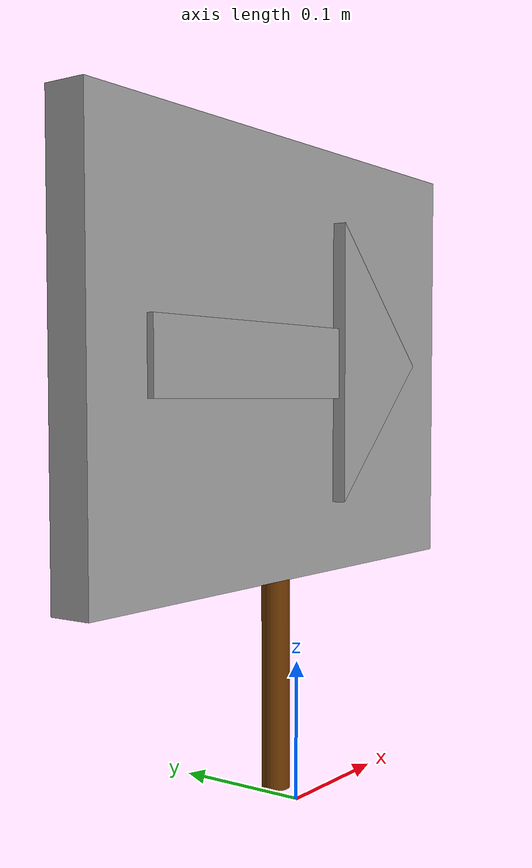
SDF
<?xml version='1.0'?>
<sdf version='1.7'>
  <model name='arrow_board'>
    <link name='link_0'>
      <inertial>
        <mass>1</mass>
        <inertia>
          <ixx>0.145833</ixx>
          <ixy>0</ixy>
          <ixz>0</ixz>
          <iyy>0.145833</iyy>
          <iyz>0</iyz>
          <izz>0.125</izz>
        </inertia>
        <pose>0 0 0 0 -0 0</pose>
      </inertial>
      <pose>-0.01675 0.00625 0.1625 0 -0 0</pose>
      <gravity>0</gravity>
      <self_collide>0</self_collide>
      <kinematic>0</kinematic>
      <enable_wind>0</enable_wind>
      <visual name='visual'>
        <pose>0 0 0 0 -0 0</pose>
        <geometry>
          <cylinder>
            <radius>0.01</radius>
            <length>0.3</length>
          </cylinder>
        </geometry>
        <material>
          <lighting>1</lighting>
          <script>
            <uri>file://media/materials/scripts/gazebo.material</uri>
            <name>Gazebo/Grey</name>
          </script>
          <shader type='pixel'>
            <normal_map>__default__</normal_map>
          </shader>
          <ambient>0.4 0.2 0 1</ambient>
          <diffuse>0.4 0.2 0 1</diffuse>
          <specular>0 0 0 1</specular>
          <emissive>0 0 0 1</emissive>
        </material>
        <transparency>0</transparency>
        <cast_shadows>1</cast_shadows>
      </visual>
      <collision name='collision'>
        <laser_retro>0</laser_retro>
        <max_contacts>10</max_contacts>
        <pose>0 0 0 0 -0 0</pose>
        <geometry>
          <cylinder>
            <radius>0.01</radius>
            <length>0.3</length>
          </cylinder>
        </geometry>
        <surface>
          <friction>
            <ode>
              <mu>1</mu>
              <mu2>1</mu2>
              <fdir1>0 0 0</fdir1>
              <slip1>0</slip1>
              <slip2>0</slip2>
            </ode>
            <torsional>
              <coefficient>1</coefficient>
              <patch_radius>0</patch_radius>
              <surface_radius>0</surface_radius>
              <use_patch_radius>1</use_patch_radius>
              <ode>
                <slip>0</slip>
              </ode>
            </torsional>
          </friction>
          <bounce>
            <restitution_coefficient>0</restitution_coefficient>
            <threshold>1e+06</threshold>
          </bounce>
          <contact>
            <collide_without_contact>0</collide_without_contact>
            <collide_without_contact_bitmask>1</collide_without_contact_bitmask>
            <collide_bitmask>1</collide_bitmask>
            <ode>
              <soft_cfm>0</soft_cfm>
              <soft_erp>0.2</soft_erp>
              <kp>1e+13</kp>
              <kd>1</kd>
              <max_vel>0.01</max_vel>
              <min_depth>0</min_depth>
            </ode>
            <bullet>
              <split_impulse>1</split_impulse>
              <split_impulse_penetration_threshold>-0.01</split_impulse_penetration_threshold>
              <soft_cfm>0</soft_cfm>
              <soft_erp>0.2</soft_erp>
              <kp>1e+13</kp>
              <kd>1</kd>
            </bullet>
          </contact>
        </surface>
      </collision>
    </link>
    <link name='link_1'>
      <inertial>
        <mass>1</mass>
        <inertia>
          <ixx>0.166667</ixx>
          <ixy>0</ixy>
          <ixz>0</ixz>
          <iyy>0.166667</iyy>
          <iyz>0</iyz>
          <izz>0.166667</izz>
        </inertia>
        <pose>0 0 0 0 -0 0</pose>
      </inertial>
      <pose>-0.01675 0.00625 0.3125 0 -0 0</pose>
      <gravity>0</gravity>
      <self_collide>0</self_collide>
      <kinematic>0</kinematic>
      <enable_wind>0</enable_wind>
      <visual name='visual'>
        <pose>0 0 0 0 -0 0</pose>
        <geometry>
          <box>
            <size>0.4 0.03 0.3</size>
          </box>
        </geometry>
        <material>
          <lighting>1</lighting>
          <script>
            <uri>file://media/materials/scripts/gazebo.material</uri>
            <name>Gazebo/Grey</name>
          </script>
          <shader type='pixel'>
            <normal_map>__default__</normal_map>
          </shader>
          <ambient>1 1 1 1</ambient>
          <diffuse>1 1 1 1</diffuse>
          <specular>1 1 1 1</specular>
          <emissive>0 0 0 1</emissive>
        </material>
        <transparency>0</transparency>
        <cast_shadows>1</cast_shadows>
      </visual>
      <collision name='collision'>
        <laser_retro>0</laser_retro>
        <max_contacts>10</max_contacts>
        <pose>0 0 0 0 -0 0</pose>
        <geometry>
          <box>
            <size>0.4 0.03 0.3</size>
          </box>
        </geometry>
        <surface>
          <friction>
            <ode>
              <mu>1</mu>
              <mu2>1</mu2>
              <fdir1>0 0 0</fdir1>
              <slip1>0</slip1>
              <slip2>0</slip2>
            </ode>
            <torsional>
              <coefficient>1</coefficient>
              <patch_radius>0</patch_radius>
              <surface_radius>0</surface_radius>
              <use_patch_radius>1</use_patch_radius>
              <ode>
                <slip>0</slip>
              </ode>
            </torsional>
          </friction>
          <bounce>
            <restitution_coefficient>0</restitution_coefficient>
            <threshold>1e+06</threshold>
          </bounce>
          <contact>
            <collide_without_contact>0</collide_without_contact>
            <collide_without_contact_bitmask>1</collide_without_contact_bitmask>
            <collide_bitmask>1</collide_bitmask>
            <ode>
              <soft_cfm>0</soft_cfm>
              <soft_erp>0.2</soft_erp>
              <kp>1e+13</kp>
              <kd>1</kd>
              <max_vel>0.01</max_vel>
              <min_depth>0</min_depth>
            </ode>
            <bullet>
              <split_impulse>1</split_impulse>
              <split_impulse_penetration_threshold>-0.01</split_impulse_penetration_threshold>
              <soft_cfm>0</soft_cfm>
              <soft_erp>0.2</soft_erp>
              <kp>1e+13</kp>
              <kd>1</kd>
            </bullet>
          </contact>
        </surface>
      </collision>
    </link>
    <link name='link_2'>
      <inertial>
        <mass>1</mass>
        <inertia>
          <ixx>0.166667</ixx>
          <ixy>0</ixy>
          <ixz>0</ixz>
          <iyy>0.166667</iyy>
          <iyz>0</iyz>
          <izz>0.166667</izz>
        </inertia>
        <pose>0 0 0 0 -0 0</pose>
      </inertial>
      <pose>-0.06675 0.00625 0.3125 0 -0 0</pose>
      <gravity>0</gravity>
      <self_collide>0</self_collide>
      <kinematic>0</kinematic>
      <enable_wind>0</enable_wind>
      <visual name='visual'>
        <pose>0 0 0 0 -0 0</pose>
        <geometry>
          <box>
            <size>0.2 0.04 0.05</size>
          </box>
        </geometry>
        <material>
          <lighting>1</lighting>
          <script>
            <uri>file://media/materials/scripts/gazebo.material</uri>
            <name>Gazebo/Grey</name>
          </script>
          <shader type='pixel'>
            <normal_map>__default__</normal_map>
          </shader>
          <ambient>0 0 0 1</ambient>
          <diffuse>0 0 0 1</diffuse>
          <specular>0 0 0 1</specular>
          <emissive>0 0 0 1</emissive>
        </material>
        <transparency>0</transparency>
        <cast_shadows>1</cast_shadows>
      </visual>
      <collision name='collision'>
        <laser_retro>0</laser_retro>
        <max_contacts>10</max_contacts>
        <pose>0 0 0 0 -0 0</pose>
        <geometry>
          <box>
            <size>0.2 0.04 0.05</size>
          </box>
        </geometry>
        <surface>
          <friction>
            <ode>
              <mu>1</mu>
              <mu2>1</mu2>
              <fdir1>0 0 0</fdir1>
              <slip1>0</slip1>
              <slip2>0</slip2>
            </ode>
            <torsional>
              <coefficient>1</coefficient>
              <patch_radius>0</patch_radius>
              <surface_radius>0</surface_radius>
              <use_patch_radius>1</use_patch_radius>
              <ode>
                <slip>0</slip>
              </ode>
            </torsional>
          </friction>
          <bounce>
            <restitution_coefficient>0</restitution_coefficient>
            <threshold>1e+06</threshold>
          </bounce>
          <contact>
            <collide_without_contact>0</collide_without_contact>
            <collide_without_contact_bitmask>1</collide_without_contact_bitmask>
            <collide_bitmask>1</collide_bitmask>
            <ode>
              <soft_cfm>0</soft_cfm>
              <soft_erp>0.2</soft_erp>
              <kp>1e+13</kp>
              <kd>1</kd>
              <max_vel>0.01</max_vel>
              <min_depth>0</min_depth>
            </ode>
            <bullet>
              <split_impulse>1</split_impulse>
              <split_impulse_penetration_threshold>-0.01</split_impulse_penetration_threshold>
              <soft_cfm>0</soft_cfm>
              <soft_erp>0.2</soft_erp>
              <kp>1e+13</kp>
              <kd>1</kd>
            </bullet>
          </contact>
        </surface>
      </collision>
    </link>
    <link name='link_4'>
      <inertial>
        <mass>1</mass>
        <inertia>
          <ixx>0.166667</ixx>
          <ixy>0</ixy>
          <ixz>0</ixz>
          <iyy>0.166667</iyy>
          <iyz>0</iyz>
          <izz>0.166667</izz>
        </inertia>
        <pose>0 0 0 0 -0 0</pose>
      </inertial>
      <pose>0.033583 -0.01875 0.2125 0 -0 0</pose>
      <gravity>0</gravity>
      <self_collide>0</self_collide>
      <kinematic>0</kinematic>
      <enable_wind>0</enable_wind>
      <visual name='visual'>
        <pose>0 0 0 0 -0 0</pose>
        <geometry>
          <mesh>
            <uri>/home/ritesh/mobrob_ws/src/mobrob/meshes/arrow_head.stl</uri>
            <scale>0.001 0.001 0.001</scale>
          </mesh>
        </geometry>
        <material>
          <lighting>1</lighting>
          <script>
            <uri>file://media/materials/scripts/gazebo.material</uri>
            <name>Gazebo/Grey</name>
          </script>
          <shader type='pixel'>
            <normal_map>__default__</normal_map>
          </shader>
          <ambient>0 0 0 1</ambient>
          <diffuse>0 0 0 1</diffuse>
          <specular>0 0 0 1</specular>
          <emissive>0 0 0 1</emissive>
        </material>
        <transparency>0</transparency>
        <cast_shadows>1</cast_shadows>
      </visual>
      <collision name='collision'>
        <laser_retro>0</laser_retro>
        <max_contacts>10</max_contacts>
        <pose>0 0 0 0 -0 0</pose>
        <geometry>
          <mesh>
            <uri>/home/ritesh/mobrob_ws/src/mobrob/meshes/arrow_head.stl</uri>
            <scale>0.001 0.001 0.001</scale>
          </mesh>
        </geometry>
        <surface>
          <friction>
            <ode>
              <mu>1</mu>
              <mu2>1</mu2>
              <fdir1>0 0 0</fdir1>
              <slip1>0</slip1>
              <slip2>0</slip2>
            </ode>
            <torsional>
              <coefficient>1</coefficient>
              <patch_radius>0</patch_radius>
              <surface_radius>0</surface_radius>
              <use_patch_radius>1</use_patch_radius>
              <ode>
                <slip>0</slip>
              </ode>
            </torsional>
          </friction>
          <bounce>
            <restitution_coefficient>0</restitution_coefficient>
            <threshold>1e+06</threshold>
          </bounce>
          <contact>
            <collide_without_contact>0</collide_without_contact>
            <collide_without_contact_bitmask>1</collide_without_contact_bitmask>
            <collide_bitmask>1</collide_bitmask>
            <ode>
              <soft_cfm>0</soft_cfm>
              <soft_erp>0.2</soft_erp>
              <kp>1e+13</kp>
              <kd>1</kd>
              <max_vel>0.01</max_vel>
              <min_depth>0</min_depth>
            </ode>
            <bullet>
              <split_impulse>1</split_impulse>
              <split_impulse_penetration_threshold>-0.01</split_impulse_penetration_threshold>
              <soft_cfm>0</soft_cfm>
              <soft_erp>0.2</soft_erp>
              <kp>1e+13</kp>
              <kd>1</kd>
            </bullet>
          </contact>
        </surface>
      </collision>
    </link>
    <static>0</static>
    <allow_auto_disable>1</allow_auto_disable>
  </model>
</sdf>
